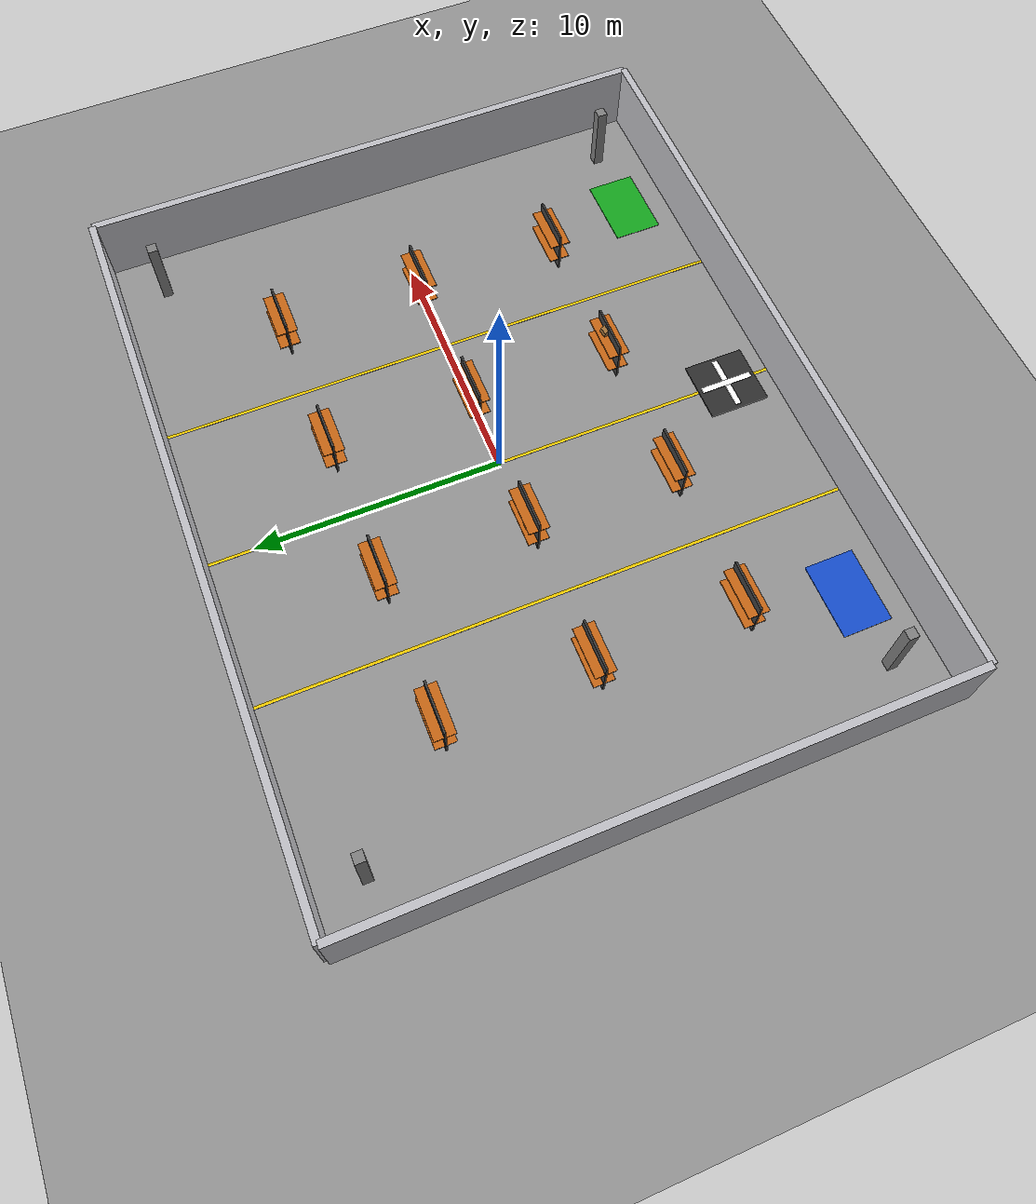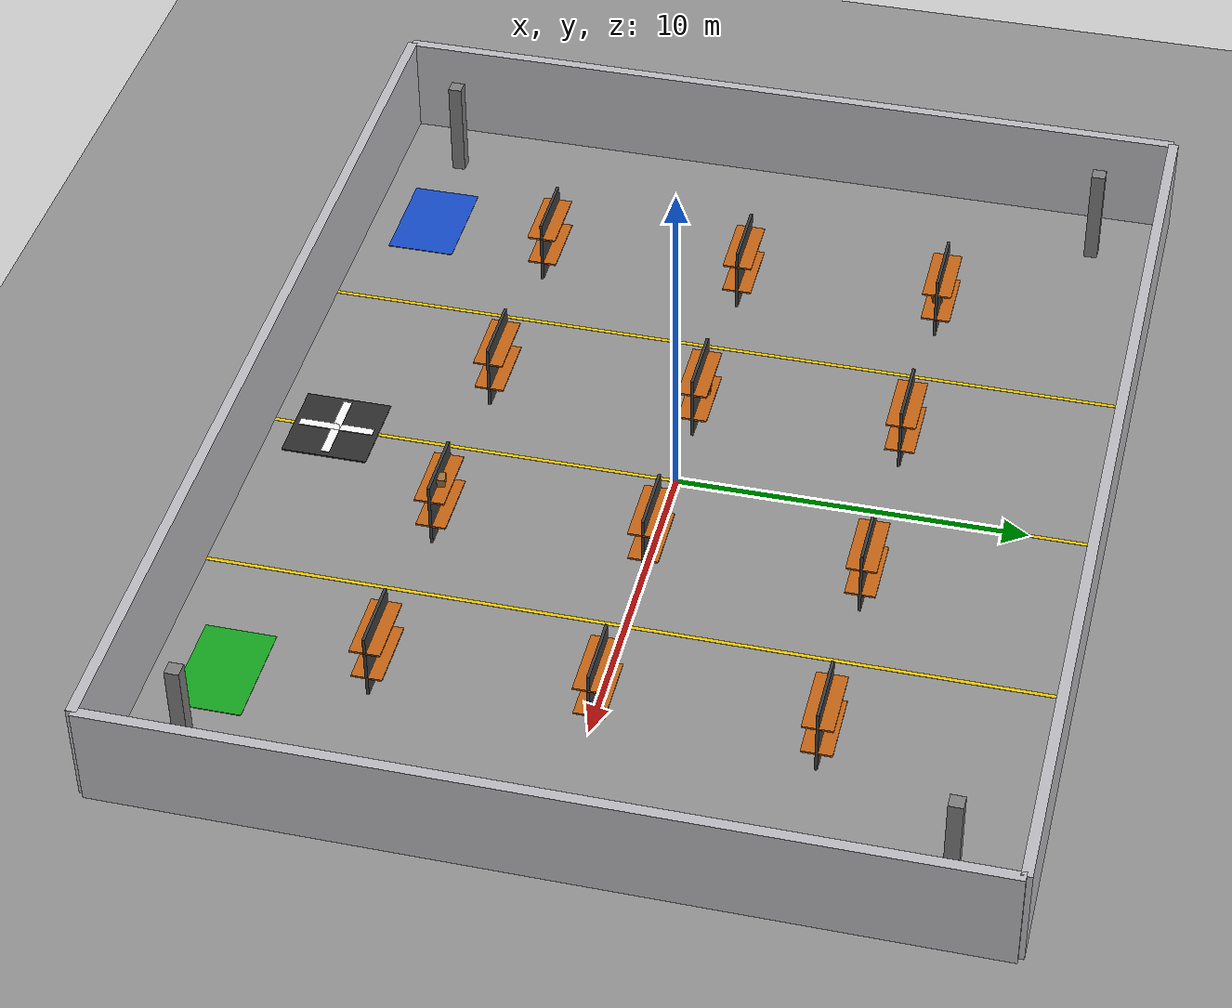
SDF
<?xml version="1.0" ?>
<sdf version="1.7">
  <world name="multi-robot_warehouse">

    <!-- PHYSICS -->
    <physics name="1ms" type="ignored">
      <max_step_size>0.001</max_step_size>
      <real_time_factor>1.0</real_time_factor>
    </physics>

    <!-- REQUIRED GAZEBO PLUGINS -->
    <plugin filename="gz-sim-physics-system"
            name="gz::sim::systems::Physics"/>
    <plugin filename="gz-sim-sensors-system"
            name="gz::sim::systems::Sensors">
      <render_engine>ogre2</render_engine>
    </plugin>
    <plugin filename="gz-sim-user-commands-system"
            name="gz::sim::systems::UserCommands"/>
    <plugin filename="gz-sim-scene-broadcaster-system"
            name="gz::sim::systems::SceneBroadcaster"/>

    <!-- SCENE & AMBIENT -->
    <scene>
      <ambient>0.6 0.6 0.6 1</ambient>
      <background>0.8 0.85 0.9 1</background>
      <shadows>true</shadows>
      <grid>false</grid>
    </scene>

    <!-- MAIN SUN LIGHT -->
    <light name="sun" type="directional">
      <cast_shadows>true</cast_shadows>
      <pose>0 0 25 0 0 0</pose>
      <diffuse>0.95 0.93 0.88 1</diffuse>
      <specular>0.3 0.3 0.3 1</specular>
      <attenuation>
        <range>100</range>
        <constant>0.9</constant>
        <linear>0.01</linear>
        <quadratic>0.001</quadratic>
      </attenuation>
      <direction>-0.4 0.1 -0.9</direction>
    </light>

    <!-- CEILING LIGHTS (warm industrial) -->
    <light name="ceiling_light_1" type="point">
      <pose>-10 6 7 0 0 0</pose>
      <diffuse>1.0 0.95 0.85 1</diffuse>
      <specular>0.4 0.4 0.35 1</specular>
      <attenuation>
        <range>18</range>
        <constant>0.5</constant>
        <linear>0.05</linear>
        <quadratic>0.002</quadratic>
      </attenuation>
      <cast_shadows>false</cast_shadows>
    </light>

    <light name="ceiling_light_2" type="point">
      <pose>-10 -6 7 0 0 0</pose>
      <diffuse>1.0 0.95 0.85 1</diffuse>
      <specular>0.4 0.4 0.35 1</specular>
      <attenuation>
        <range>18</range>
        <constant>0.5</constant>
        <linear>0.05</linear>
        <quadratic>0.002</quadratic>
      </attenuation>
      <cast_shadows>false</cast_shadows>
    </light>

    <light name="ceiling_light_3" type="point">
      <pose>0 6 7 0 0 0</pose>
      <diffuse>1.0 0.95 0.85 1</diffuse>
      <specular>0.4 0.4 0.35 1</specular>
      <attenuation>
        <range>18</range>
        <constant>0.5</constant>
        <linear>0.05</linear>
        <quadratic>0.002</quadratic>
      </attenuation>
      <cast_shadows>false</cast_shadows>
    </light>

    <light name="ceiling_light_4" type="point">
      <pose>0 -6 7 0 0 0</pose>
      <diffuse>1.0 0.95 0.85 1</diffuse>
      <specular>0.4 0.4 0.35 1</specular>
      <attenuation>
        <range>18</range>
        <constant>0.5</constant>
        <linear>0.05</linear>
        <quadratic>0.002</quadratic>
      </attenuation>
      <cast_shadows>false</cast_shadows>
    </light>

    <light name="ceiling_light_5" type="point">
      <pose>10 6 7 0 0 0</pose>
      <diffuse>1.0 0.95 0.85 1</diffuse>
      <specular>0.4 0.4 0.35 1</specular>
      <attenuation>
        <range>18</range>
        <constant>0.5</constant>
        <linear>0.05</linear>
        <quadratic>0.002</quadratic>
      </attenuation>
      <cast_shadows>false</cast_shadows>
    </light>

    <light name="ceiling_light_6" type="point">
      <pose>10 -6 7 0 0 0</pose>
      <diffuse>1.0 0.95 0.85 1</diffuse>
      <specular>0.4 0.4 0.35 1</specular>
      <attenuation>
        <range>18</range>
        <constant>0.5</constant>
        <linear>0.05</linear>
        <quadratic>0.002</quadratic>
      </attenuation>
      <cast_shadows>false</cast_shadows>
    </light>

    <!-- GROUND — concrete floor with yellow lane marking -->
    <model name="ground_plane">
      <static>true</static>
      <link name="link">
        <collision name="collision">
          <geometry>
            <plane>
              <normal>0 0 1</normal>
              <size>80 80</size>
            </plane>
          </geometry>
          <surface>
            <friction>
              <ode>
                <mu>0.9</mu>
                <mu2>0.9</mu2>
              </ode>
            </friction>
          </surface>
        </collision>
        <visual name="visual">
          <geometry>
            <plane>
              <normal>0 0 1</normal>
              <size>80 80</size>
            </plane>
          </geometry>
          <material>
            <!-- Concrete grey floor -->
            <ambient>0.50 0.50 0.50 1</ambient>
            <diffuse>0.58 0.58 0.58 1</diffuse>
            <specular>0.08 0.08 0.08 1</specular>
          </material>
        </visual>
      </link>
    </model>

    <!-- Aisle lane markings (yellow stripes) -->
    <model name="lane_mark_1">
      <static>true</static>
      <pose>-6 0 0.002 0 0 0</pose>
      <link name="link">
        <visual name="visual">
          <geometry><box><size>0.12 24 0.005</size></box></geometry>
          <material>
            <ambient>0.9 0.75 0.0 1</ambient>
            <diffuse>0.95 0.80 0.0 1</diffuse>
            <specular>0.1 0.1 0.0 1</specular>
          </material>
        </visual>
      </link>
    </model>

    <model name="lane_mark_2">
      <static>true</static>
      <pose>0 0 0.002 0 0 0</pose>
      <link name="link">
        <visual name="visual">
          <geometry><box><size>0.12 24 0.005</size></box></geometry>
          <material>
            <ambient>0.9 0.75 0.0 1</ambient>
            <diffuse>0.95 0.80 0.0 1</diffuse>
            <specular>0.1 0.1 0.0 1</specular>
          </material>
        </visual>
      </link>
    </model>

    <model name="lane_mark_3">
      <static>true</static>
      <pose>6 0 0.002 0 0 0</pose>
      <link name="link">
        <visual name="visual">
          <geometry><box><size>0.12 24 0.005</size></box></geometry>
          <material>
            <ambient>0.9 0.75 0.0 1</ambient>
            <diffuse>0.95 0.80 0.0 1</diffuse>
            <specular>0.1 0.1 0.0 1</specular>
          </material>
        </visual>
      </link>
    </model>

    <!-- WALLS — light grey industrial -->

    <!-- NORTH WALL -->
    <model name="north_wall">
      <static>true</static>
      <pose>0 12 1.5 0 0 0</pose>
      <link name="link">
        <collision name="collision">
          <geometry><box><size>30 0.3 3</size></box></geometry>
        </collision>
        <visual name="visual">
          <geometry><box><size>30 0.3 3</size></box></geometry>
          <material>
            <ambient>0.70 0.70 0.72 1</ambient>
            <diffuse>0.75 0.75 0.77 1</diffuse>
            <specular>0.15 0.15 0.15 1</specular>
          </material>
        </visual>
      </link>
    </model>

    <!-- SOUTH WALL -->
    <model name="south_wall">
      <static>true</static>
      <pose>0 -12 1.5 0 0 0</pose>
      <link name="link">
        <collision name="collision">
          <geometry><box><size>30 0.3 3</size></box></geometry>
        </collision>
        <visual name="visual">
          <geometry><box><size>30 0.3 3</size></box></geometry>
          <material>
            <ambient>0.70 0.70 0.72 1</ambient>
            <diffuse>0.75 0.75 0.77 1</diffuse>
            <specular>0.15 0.15 0.15 1</specular>
          </material>
        </visual>
      </link>
    </model>

    <!-- EAST WALL -->
    <model name="east_wall">
      <static>true</static>
      <pose>15 0 1.5 0 0 1.57</pose>
      <link name="link">
        <collision name="collision">
          <geometry><box><size>24 0.3 3</size></box></geometry>
        </collision>
        <visual name="visual">
          <geometry><box><size>24 0.3 3</size></box></geometry>
          <material>
            <ambient>0.70 0.70 0.72 1</ambient>
            <diffuse>0.75 0.75 0.77 1</diffuse>
            <specular>0.15 0.15 0.15 1</specular>
          </material>
        </visual>
      </link>
    </model>

    <!-- WEST WALL -->
    <model name="west_wall">
      <static>true</static>
      <pose>-15 0 1.5 0 0 1.57</pose>
      <link name="link">
        <collision name="collision">
          <geometry><box><size>24 0.3 3</size></box></geometry>
        </collision>
        <visual name="visual">
          <geometry><box><size>24 0.3 3</size></box></geometry>
          <material>
            <ambient>0.70 0.70 0.72 1</ambient>
            <diffuse>0.75 0.75 0.77 1</diffuse>
            <specular>0.15 0.15 0.15 1</specular>
          </material>
        </visual>
      </link>
    </model>

    <!-- SHELVES — orange steel industrial look -->
    <!-- Each shelf: upright frame (dark grey) + 2 shelf boards (orange-brown) -->

    <!-- ===== ROW 1 (y = 6) ===== -->

    <!-- shelf_1_1 at (-9, 6) -->
    <model name="shelf_1_1_frame">
      <static>true</static>
      <pose>-9 6 1.0 0 0 0</pose>
      <link name="link">
        <collision name="collision">
          <geometry><box><size>2.0 0.08 2.0</size></box></geometry>
        </collision>
        <visual name="visual">
          <geometry><box><size>2.0 0.08 2.0</size></box></geometry>
          <material>
            <ambient>0.20 0.20 0.20 1</ambient>
            <diffuse>0.25 0.25 0.25 1</diffuse>
            <specular>0.30 0.30 0.30 1</specular>
          </material>
        </visual>
      </link>
    </model>
    <model name="shelf_1_1_board_low">
      <static>true</static>
      <pose>-9 6 0.6 0 0 0</pose>
      <link name="link">
        <visual name="visual">
          <geometry><box><size>2.0 0.85 0.05</size></box></geometry>
          <material>
            <ambient>0.72 0.35 0.05 1</ambient>
            <diffuse>0.78 0.40 0.08 1</diffuse>
            <specular>0.20 0.12 0.04 1</specular>
          </material>
        </visual>
      </link>
    </model>
    <model name="shelf_1_1_board_high">
      <static>true</static>
      <pose>-9 6 1.5 0 0 0</pose>
      <link name="link">
        <visual name="visual">
          <geometry><box><size>2.0 0.85 0.05</size></box></geometry>
          <material>
            <ambient>0.72 0.35 0.05 1</ambient>
            <diffuse>0.78 0.40 0.08 1</diffuse>
            <specular>0.20 0.12 0.04 1</specular>
          </material>
        </visual>
      </link>
    </model>

    <!-- shelf_1_2 at (-3, 6) -->
    <model name="shelf_1_2_frame">
      <static>true</static>
      <pose>-3 6 1.0 0 0 0</pose>
      <link name="link">
        <collision name="collision">
          <geometry><box><size>2.0 0.08 2.0</size></box></geometry>
        </collision>
        <visual name="visual">
          <geometry><box><size>2.0 0.08 2.0</size></box></geometry>
          <material>
            <ambient>0.20 0.20 0.20 1</ambient>
            <diffuse>0.25 0.25 0.25 1</diffuse>
            <specular>0.30 0.30 0.30 1</specular>
          </material>
        </visual>
      </link>
    </model>
    <model name="shelf_1_2_board_low">
      <static>true</static>
      <pose>-3 6 0.6 0 0 0</pose>
      <link name="link">
        <visual name="visual">
          <geometry><box><size>2.0 0.85 0.05</size></box></geometry>
          <material>
            <ambient>0.72 0.35 0.05 1</ambient>
            <diffuse>0.78 0.40 0.08 1</diffuse>
            <specular>0.20 0.12 0.04 1</specular>
          </material>
        </visual>
      </link>
    </model>
    <model name="shelf_1_2_board_high">
      <static>true</static>
      <pose>-3 6 1.5 0 0 0</pose>
      <link name="link">
        <visual name="visual">
          <geometry><box><size>2.0 0.85 0.05</size></box></geometry>
          <material>
            <ambient>0.72 0.35 0.05 1</ambient>
            <diffuse>0.78 0.40 0.08 1</diffuse>
            <specular>0.20 0.12 0.04 1</specular>
          </material>
        </visual>
      </link>
    </model>

    <!-- shelf_1_3 at (3, 6) -->
    <model name="shelf_1_3_frame">
      <static>true</static>
      <pose>3 6 1.0 0 0 0</pose>
      <link name="link">
        <collision name="collision">
          <geometry><box><size>2.0 0.08 2.0</size></box></geometry>
        </collision>
        <visual name="visual">
          <geometry><box><size>2.0 0.08 2.0</size></box></geometry>
          <material>
            <ambient>0.20 0.20 0.20 1</ambient>
            <diffuse>0.25 0.25 0.25 1</diffuse>
            <specular>0.30 0.30 0.30 1</specular>
          </material>
        </visual>
      </link>
    </model>
    <model name="shelf_1_3_board_low">
      <static>true</static>
      <pose>3 6 0.6 0 0 0</pose>
      <link name="link">
        <visual name="visual">
          <geometry><box><size>2.0 0.85 0.05</size></box></geometry>
          <material>
            <ambient>0.72 0.35 0.05 1</ambient>
            <diffuse>0.78 0.40 0.08 1</diffuse>
            <specular>0.20 0.12 0.04 1</specular>
          </material>
        </visual>
      </link>
    </model>
    <model name="shelf_1_3_board_high">
      <static>true</static>
      <pose>3 6 1.5 0 0 0</pose>
      <link name="link">
        <visual name="visual">
          <geometry><box><size>2.0 0.85 0.05</size></box></geometry>
          <material>
            <ambient>0.72 0.35 0.05 1</ambient>
            <diffuse>0.78 0.40 0.08 1</diffuse>
            <specular>0.20 0.12 0.04 1</specular>
          </material>
        </visual>
      </link>
    </model>

    <!-- shelf_1_4 at (9, 6) -->
    <model name="shelf_1_4_frame">
      <static>true</static>
      <pose>9 6 1.0 0 0 0</pose>
      <link name="link">
        <collision name="collision">
          <geometry><box><size>2.0 0.08 2.0</size></box></geometry>
        </collision>
        <visual name="visual">
          <geometry><box><size>2.0 0.08 2.0</size></box></geometry>
          <material>
            <ambient>0.20 0.20 0.20 1</ambient>
            <diffuse>0.25 0.25 0.25 1</diffuse>
            <specular>0.30 0.30 0.30 1</specular>
          </material>
        </visual>
      </link>
    </model>
    <model name="shelf_1_4_board_low">
      <static>true</static>
      <pose>9 6 0.6 0 0 0</pose>
      <link name="link">
        <visual name="visual">
          <geometry><box><size>2.0 0.85 0.05</size></box></geometry>
          <material>
            <ambient>0.72 0.35 0.05 1</ambient>
            <diffuse>0.78 0.40 0.08 1</diffuse>
            <specular>0.20 0.12 0.04 1</specular>
          </material>
        </visual>
      </link>
    </model>
    <model name="shelf_1_4_board_high">
      <static>true</static>
      <pose>9 6 1.5 0 0 0</pose>
      <link name="link">
        <visual name="visual">
          <geometry><box><size>2.0 0.85 0.05</size></box></geometry>
          <material>
            <ambient>0.72 0.35 0.05 1</ambient>
            <diffuse>0.78 0.40 0.08 1</diffuse>
            <specular>0.20 0.12 0.04 1</specular>
          </material>
        </visual>
      </link>
    </model>

    <!-- ===== ROW 2 (y = 0) ===== -->

    <!-- shelf_2_1 at (-9, 0) -->
    <model name="shelf_2_1_frame">
      <static>true</static>
      <pose>-9 0 1.0 0 0 0</pose>
      <link name="link">
        <collision name="collision">
          <geometry><box><size>2.0 0.08 2.0</size></box></geometry>
        </collision>
        <visual name="visual">
          <geometry><box><size>2.0 0.08 2.0</size></box></geometry>
          <material>
            <ambient>0.20 0.20 0.20 1</ambient>
            <diffuse>0.25 0.25 0.25 1</diffuse>
            <specular>0.30 0.30 0.30 1</specular>
          </material>
        </visual>
      </link>
    </model>
    <model name="shelf_2_1_board_low">
      <static>true</static>
      <pose>-9 0 0.6 0 0 0</pose>
      <link name="link">
        <visual name="visual">
          <geometry><box><size>2.0 0.85 0.05</size></box></geometry>
          <material>
            <ambient>0.72 0.35 0.05 1</ambient>
            <diffuse>0.78 0.40 0.08 1</diffuse>
            <specular>0.20 0.12 0.04 1</specular>
          </material>
        </visual>
      </link>
    </model>
    <model name="shelf_2_1_board_high">
      <static>true</static>
      <pose>-9 0 1.5 0 0 0</pose>
      <link name="link">
        <visual name="visual">
          <geometry><box><size>2.0 0.85 0.05</size></box></geometry>
          <material>
            <ambient>0.72 0.35 0.05 1</ambient>
            <diffuse>0.78 0.40 0.08 1</diffuse>
            <specular>0.20 0.12 0.04 1</specular>
          </material>
        </visual>
      </link>
    </model>

    <!-- shelf_2_2 at (-3, 0) -->
    <model name="shelf_2_2_frame">
      <static>true</static>
      <pose>-3 0 1.0 0 0 0</pose>
      <link name="link">
        <collision name="collision">
          <geometry><box><size>2.0 0.08 2.0</size></box></geometry>
        </collision>
        <visual name="visual">
          <geometry><box><size>2.0 0.08 2.0</size></box></geometry>
          <material>
            <ambient>0.20 0.20 0.20 1</ambient>
            <diffuse>0.25 0.25 0.25 1</diffuse>
            <specular>0.30 0.30 0.30 1</specular>
          </material>
        </visual>
      </link>
    </model>
    <model name="shelf_2_2_board_low">
      <static>true</static>
      <pose>-3 0 0.6 0 0 0</pose>
      <link name="link">
        <visual name="visual">
          <geometry><box><size>2.0 0.85 0.05</size></box></geometry>
          <material>
            <ambient>0.72 0.35 0.05 1</ambient>
            <diffuse>0.78 0.40 0.08 1</diffuse>
            <specular>0.20 0.12 0.04 1</specular>
          </material>
        </visual>
      </link>
    </model>
    <model name="shelf_2_2_board_high">
      <static>true</static>
      <pose>-3 0 1.5 0 0 0</pose>
      <link name="link">
        <visual name="visual">
          <geometry><box><size>2.0 0.85 0.05</size></box></geometry>
          <material>
            <ambient>0.72 0.35 0.05 1</ambient>
            <diffuse>0.78 0.40 0.08 1</diffuse>
            <specular>0.20 0.12 0.04 1</specular>
          </material>
        </visual>
      </link>
    </model>

    <!-- shelf_2_3 at (3, 0) -->
    <model name="shelf_2_3_frame">
      <static>true</static>
      <pose>3 0 1.0 0 0 0</pose>
      <link name="link">
        <collision name="collision">
          <geometry><box><size>2.0 0.08 2.0</size></box></geometry>
        </collision>
        <visual name="visual">
          <geometry><box><size>2.0 0.08 2.0</size></box></geometry>
          <material>
            <ambient>0.20 0.20 0.20 1</ambient>
            <diffuse>0.25 0.25 0.25 1</diffuse>
            <specular>0.30 0.30 0.30 1</specular>
          </material>
        </visual>
      </link>
    </model>
    <model name="shelf_2_3_board_low">
      <static>true</static>
      <pose>3 0 0.6 0 0 0</pose>
      <link name="link">
        <visual name="visual">
          <geometry><box><size>2.0 0.85 0.05</size></box></geometry>
          <material>
            <ambient>0.72 0.35 0.05 1</ambient>
            <diffuse>0.78 0.40 0.08 1</diffuse>
            <specular>0.20 0.12 0.04 1</specular>
          </material>
        </visual>
      </link>
    </model>
    <model name="shelf_2_3_board_high">
      <static>true</static>
      <pose>3 0 1.5 0 0 0</pose>
      <link name="link">
        <visual name="visual">
          <geometry><box><size>2.0 0.85 0.05</size></box></geometry>
          <material>
            <ambient>0.72 0.35 0.05 1</ambient>
            <diffuse>0.78 0.40 0.08 1</diffuse>
            <specular>0.20 0.12 0.04 1</specular>
          </material>
        </visual>
      </link>
    </model>

    <!-- shelf_2_4 at (9, 0) -->
    <model name="shelf_2_4_frame">
      <static>true</static>
      <pose>9 0 1.0 0 0 0</pose>
      <link name="link">
        <collision name="collision">
          <geometry><box><size>2.0 0.08 2.0</size></box></geometry>
        </collision>
        <visual name="visual">
          <geometry><box><size>2.0 0.08 2.0</size></box></geometry>
          <material>
            <ambient>0.20 0.20 0.20 1</ambient>
            <diffuse>0.25 0.25 0.25 1</diffuse>
            <specular>0.30 0.30 0.30 1</specular>
          </material>
        </visual>
      </link>
    </model>
    <model name="shelf_2_4_board_low">
      <static>true</static>
      <pose>9 0 0.6 0 0 0</pose>
      <link name="link">
        <visual name="visual">
          <geometry><box><size>2.0 0.85 0.05</size></box></geometry>
          <material>
            <ambient>0.72 0.35 0.05 1</ambient>
            <diffuse>0.78 0.40 0.08 1</diffuse>
            <specular>0.20 0.12 0.04 1</specular>
          </material>
        </visual>
      </link>
    </model>
    <model name="shelf_2_4_board_high">
      <static>true</static>
      <pose>9 0 1.5 0 0 0</pose>
      <link name="link">
        <visual name="visual">
          <geometry><box><size>2.0 0.85 0.05</size></box></geometry>
          <material>
            <ambient>0.72 0.35 0.05 1</ambient>
            <diffuse>0.78 0.40 0.08 1</diffuse>
            <specular>0.20 0.12 0.04 1</specular>
          </material>
        </visual>
      </link>
    </model>

    <!-- ===== ROW 3 (y = -6) ===== -->

    <!-- shelf_3_1 at (-9, -6) -->
    <model name="shelf_3_1_frame">
      <static>true</static>
      <pose>-9 -6 1.0 0 0 0</pose>
      <link name="link">
        <collision name="collision">
          <geometry><box><size>2.0 0.08 2.0</size></box></geometry>
        </collision>
        <visual name="visual">
          <geometry><box><size>2.0 0.08 2.0</size></box></geometry>
          <material>
            <ambient>0.20 0.20 0.20 1</ambient>
            <diffuse>0.25 0.25 0.25 1</diffuse>
            <specular>0.30 0.30 0.30 1</specular>
          </material>
        </visual>
      </link>
    </model>
    <model name="shelf_3_1_board_low">
      <static>true</static>
      <pose>-9 -6 0.6 0 0 0</pose>
      <link name="link">
        <visual name="visual">
          <geometry><box><size>2.0 0.85 0.05</size></box></geometry>
          <material>
            <ambient>0.72 0.35 0.05 1</ambient>
            <diffuse>0.78 0.40 0.08 1</diffuse>
            <specular>0.20 0.12 0.04 1</specular>
          </material>
        </visual>
      </link>
    </model>
    <model name="shelf_3_1_board_high">
      <static>true</static>
      <pose>-9 -6 1.5 0 0 0</pose>
      <link name="link">
        <visual name="visual">
          <geometry><box><size>2.0 0.85 0.05</size></box></geometry>
          <material>
            <ambient>0.72 0.35 0.05 1</ambient>
            <diffuse>0.78 0.40 0.08 1</diffuse>
            <specular>0.20 0.12 0.04 1</specular>
          </material>
        </visual>
      </link>
    </model>

    <!-- shelf_3_2 at (-3, -6) -->
    <model name="shelf_3_2_frame">
      <static>true</static>
      <pose>-3 -6 1.0 0 0 0</pose>
      <link name="link">
        <collision name="collision">
          <geometry><box><size>2.0 0.08 2.0</size></box></geometry>
        </collision>
        <visual name="visual">
          <geometry><box><size>2.0 0.08 2.0</size></box></geometry>
          <material>
            <ambient>0.20 0.20 0.20 1</ambient>
            <diffuse>0.25 0.25 0.25 1</diffuse>
            <specular>0.30 0.30 0.30 1</specular>
          </material>
        </visual>
      </link>
    </model>
    <model name="shelf_3_2_board_low">
      <static>true</static>
      <pose>-3 -6 0.6 0 0 0</pose>
      <link name="link">
        <visual name="visual">
          <geometry><box><size>2.0 0.85 0.05</size></box></geometry>
          <material>
            <ambient>0.72 0.35 0.05 1</ambient>
            <diffuse>0.78 0.40 0.08 1</diffuse>
            <specular>0.20 0.12 0.04 1</specular>
          </material>
        </visual>
      </link>
    </model>
    <model name="shelf_3_2_board_high">
      <static>true</static>
      <pose>-3 -6 1.5 0 0 0</pose>
      <link name="link">
        <visual name="visual">
          <geometry><box><size>2.0 0.85 0.05</size></box></geometry>
          <material>
            <ambient>0.72 0.35 0.05 1</ambient>
            <diffuse>0.78 0.40 0.08 1</diffuse>
            <specular>0.20 0.12 0.04 1</specular>
          </material>
        </visual>
      </link>
    </model>

    <!-- shelf_3_3 at (3, -6) -->
    <model name="shelf_3_3_frame">
      <static>true</static>
      <pose>3 -6 1.0 0 0 0</pose>
      <link name="link">
        <collision name="collision">
          <geometry><box><size>2.0 0.08 2.0</size></box></geometry>
        </collision>
        <visual name="visual">
          <geometry><box><size>2.0 0.08 2.0</size></box></geometry>
          <material>
            <ambient>0.20 0.20 0.20 1</ambient>
            <diffuse>0.25 0.25 0.25 1</diffuse>
            <specular>0.30 0.30 0.30 1</specular>
          </material>
        </visual>
      </link>
    </model>
    <model name="shelf_3_3_board_low">
      <static>true</static>
      <pose>3 -6 0.6 0 0 0</pose>
      <link name="link">
        <visual name="visual">
          <geometry><box><size>2.0 0.85 0.05</size></box></geometry>
          <material>
            <ambient>0.72 0.35 0.05 1</ambient>
            <diffuse>0.78 0.40 0.08 1</diffuse>
            <specular>0.20 0.12 0.04 1</specular>
          </material>
        </visual>
      </link>
    </model>
    <model name="shelf_3_3_board_high">
      <static>true</static>
      <pose>3 -6 1.5 0 0 0</pose>
      <link name="link">
        <visual name="visual">
          <geometry><box><size>2.0 0.85 0.05</size></box></geometry>
          <material>
            <ambient>0.72 0.35 0.05 1</ambient>
            <diffuse>0.78 0.40 0.08 1</diffuse>
            <specular>0.20 0.12 0.04 1</specular>
          </material>
        </visual>
      </link>
    </model>

    <!-- shelf_3_4 at (9, -6) -->
    <model name="shelf_3_4_frame">
      <static>true</static>
      <pose>9 -6 1.0 0 0 0</pose>
      <link name="link">
        <collision name="collision">
          <geometry><box><size>2.0 0.08 2.0</size></box></geometry>
        </collision>
        <visual name="visual">
          <geometry><box><size>2.0 0.08 2.0</size></box></geometry>
          <material>
            <ambient>0.20 0.20 0.20 1</ambient>
            <diffuse>0.25 0.25 0.25 1</diffuse>
            <specular>0.30 0.30 0.30 1</specular>
          </material>
        </visual>
      </link>
    </model>
    <model name="shelf_3_4_board_low">
      <static>true</static>
      <pose>9 -6 0.6 0 0 0</pose>
      <link name="link">
        <visual name="visual">
          <geometry><box><size>2.0 0.85 0.05</size></box></geometry>
          <material>
            <ambient>0.72 0.35 0.05 1</ambient>
            <diffuse>0.78 0.40 0.08 1</diffuse>
            <specular>0.20 0.12 0.04 1</specular>
          </material>
        </visual>
      </link>
    </model>
    <model name="shelf_3_4_board_high">
      <static>true</static>
      <pose>9 -6 1.5 0 0 0</pose>
      <link name="link">
        <visual name="visual">
          <geometry><box><size>2.0 0.85 0.05</size></box></geometry>
          <material>
            <ambient>0.72 0.35 0.05 1</ambient>
            <diffuse>0.78 0.40 0.08 1</diffuse>
            <specular>0.20 0.12 0.04 1</specular>
          </material>
        </visual>
      </link>
    </model>

    <!-- CHARGING STATION — bright blue platform -->
    <model name="charging_station_base">
      <static>true</static>
      <pose>-10 -10 0.01 0 0 0</pose>
      <link name="link">
        <visual name="visual">
          <geometry><box><size>3.0 2.0 0.02</size></box></geometry>
          <material>
            <ambient>0.05 0.25 0.70 1</ambient>
            <diffuse>0.08 0.30 0.80 1</diffuse>
            <specular>0.30 0.40 0.60 1</specular>
          </material>
        </visual>
      </link>
    </model>

    <!-- DELIVERY STATION — bright green platform -->
    <model name="delivery_station_base">
      <static>true</static>
      <pose>10 -10 0.01 0 0 0</pose>
      <link name="link">
        <visual name="visual">
          <geometry><box><size>3.0 2.0 0.02</size></box></geometry>
          <material>
            <ambient>0.05 0.55 0.10 1</ambient>
            <diffuse>0.08 0.65 0.12 1</diffuse>
            <specular>0.20 0.40 0.20 1</specular>
          </material>
        </visual>
      </link>
    </model>

    <!-- DRONE LANDING PAD — white cross on dark grey pad -->
    <model name="drone_pad_base">
      <static>true</static>
      <pose>0 -10 0.02 0 0 0</pose>
      <link name="link">
        <collision name="collision">
          <geometry><box><size>2.5 2.5 0.04</size></box></geometry>
        </collision>
        <visual name="visual">
          <geometry><box><size>2.5 2.5 0.04</size></box></geometry>
          <material>
            <ambient>0.15 0.15 0.15 1</ambient>
            <diffuse>0.18 0.18 0.18 1</diffuse>
            <specular>0.25 0.25 0.25 1</specular>
          </material>
        </visual>
      </link>
    </model>
    <!-- Cross arm H -->
    <model name="drone_pad_cross_h">
      <static>true</static>
      <pose>0 -10 0.06 0 0 0</pose>
      <link name="link">
        <visual name="visual">
          <geometry><box><size>2.2 0.25 0.02</size></box></geometry>
          <material>
            <ambient>0.95 0.95 0.95 1</ambient>
            <diffuse>1.0 1.0 1.0 1</diffuse>
            <specular>0.5 0.5 0.5 1</specular>
          </material>
        </visual>
      </link>
    </model>
    <!-- Cross arm V -->
    <model name="drone_pad_cross_v">
      <static>true</static>
      <pose>0 -10 0.06 0 0 1.5708</pose>
      <link name="link">
        <visual name="visual">
          <geometry><box><size>2.2 0.25 0.02</size></box></geometry>
          <material>
            <ambient>0.95 0.95 0.95 1</ambient>
            <diffuse>1.0 1.0 1.0 1</diffuse>
            <specular>0.5 0.5 0.5 1</specular>
          </material>
        </visual>
      </link>
    </model>

    <!-- CARDBOARD BOXES on shelves (brown packages) -->
    <model name="box_1_1a">
      <static>true</static>
      <pose>-9.4 6.1 0.75 0 0 0</pose>
      <link name="link">
        <visual name="visual">
          <geometry><box><size>0.35 0.30 0.30</size></box></geometry>
          <material>
            <ambient>0.55 0.38 0.18 1</ambient>
            <diffuse>0.62 0.44 0.22 1</diffuse>
            <specular>0.05 0.04 0.02 1</specular>
          </material>
        </visual>
      </link>
    </model>

    <model name="box_1_1b">
      <static>true</static>
      <pose>-8.9 5.9 0.75 0 0 0.3</pose>
      <link name="link">
        <visual name="visual">
          <geometry><box><size>0.30 0.28 0.28</size></box></geometry>
          <material>
            <ambient>0.60 0.42 0.20 1</ambient>
            <diffuse>0.65 0.46 0.24 1</diffuse>
            <specular>0.05 0.04 0.02 1</specular>
          </material>
        </visual>
      </link>
    </model>

    <model name="box_2_2a">
      <static>true</static>
      <pose>-3.3 0.1 0.75 0 0 0.1</pose>
      <link name="link">
        <visual name="visual">
          <geometry><box><size>0.38 0.32 0.32</size></box></geometry>
          <material>
            <ambient>0.55 0.38 0.18 1</ambient>
            <diffuse>0.62 0.44 0.22 1</diffuse>
            <specular>0.05 0.04 0.02 1</specular>
          </material>
        </visual>
      </link>
    </model>

    <model name="box_3_3a">
      <static>true</static>
      <pose>3.2 -5.9 1.65 0 0 0.2</pose>
      <link name="link">
        <visual name="visual">
          <geometry><box><size>0.32 0.28 0.26</size></box></geometry>
          <material>
            <ambient>0.58 0.40 0.19 1</ambient>
            <diffuse>0.64 0.45 0.23 1</diffuse>
            <specular>0.05 0.04 0.02 1</specular>
          </material>
        </visual>
      </link>
    </model>

    <!-- SUPPORT PILLARS -->
    <model name="pillar_nw">
      <static>true</static>
      <pose>-13 10 1.5 0 0 0</pose>
      <link name="link">
        <collision name="collision">
          <geometry><box><size>0.4 0.4 3.0</size></box></geometry>
        </collision>
        <visual name="visual">
          <geometry><box><size>0.4 0.4 3.0</size></box></geometry>
          <material>
            <ambient>0.45 0.45 0.45 1</ambient>
            <diffuse>0.50 0.50 0.50 1</diffuse>
            <specular>0.20 0.20 0.20 1</specular>
          </material>
        </visual>
      </link>
    </model>

    <model name="pillar_ne">
      <static>true</static>
      <pose>13 10 1.5 0 0 0</pose>
      <link name="link">
        <collision name="collision">
          <geometry><box><size>0.4 0.4 3.0</size></box></geometry>
        </collision>
        <visual name="visual">
          <geometry><box><size>0.4 0.4 3.0</size></box></geometry>
          <material>
            <ambient>0.45 0.45 0.45 1</ambient>
            <diffuse>0.50 0.50 0.50 1</diffuse>
            <specular>0.20 0.20 0.20 1</specular>
          </material>
        </visual>
      </link>
    </model>

    <model name="pillar_sw">
      <static>true</static>
      <pose>-13 -10 1.5 0 0 0</pose>
      <link name="link">
        <collision name="collision">
          <geometry><box><size>0.4 0.4 3.0</size></box></geometry>
        </collision>
        <visual name="visual">
          <geometry><box><size>0.4 0.4 3.0</size></box></geometry>
          <material>
            <ambient>0.45 0.45 0.45 1</ambient>
            <diffuse>0.50 0.50 0.50 1</diffuse>
            <specular>0.20 0.20 0.20 1</specular>
          </material>
        </visual>
      </link>
    </model>

    <model name="pillar_se">
      <static>true</static>
      <pose>13 -10 1.5 0 0 0</pose>
      <link name="link">
        <collision name="collision">
          <geometry><box><size>0.4 0.4 3.0</size></box></geometry>
        </collision>
        <visual name="visual">
          <geometry><box><size>0.4 0.4 3.0</size></box></geometry>
          <material>
            <ambient>0.45 0.45 0.45 1</ambient>
            <diffuse>0.50 0.50 0.50 1</diffuse>
            <specular>0.20 0.20 0.20 1</specular>
          </material>
        </visual>
      </link>
    </model>

  </world>
</sdf>
